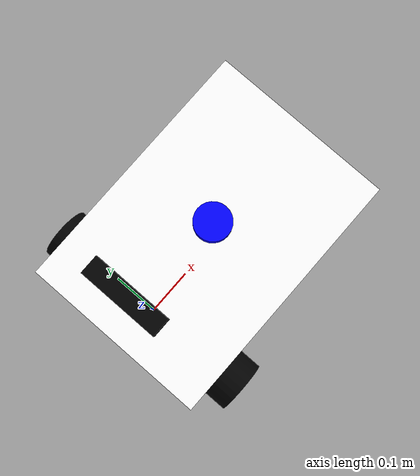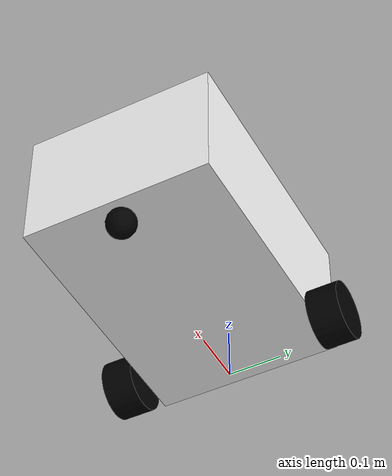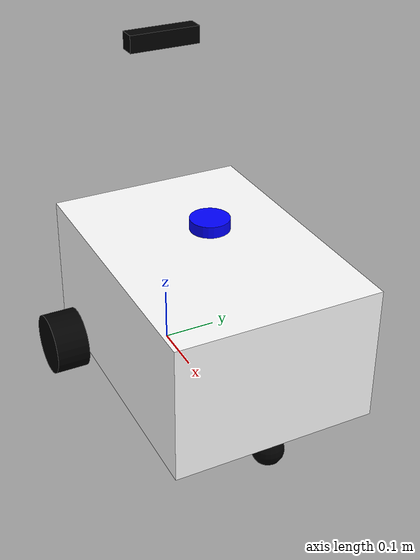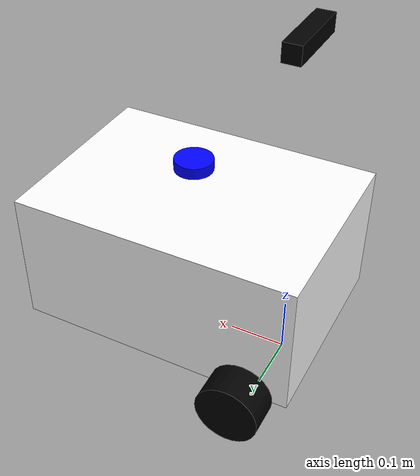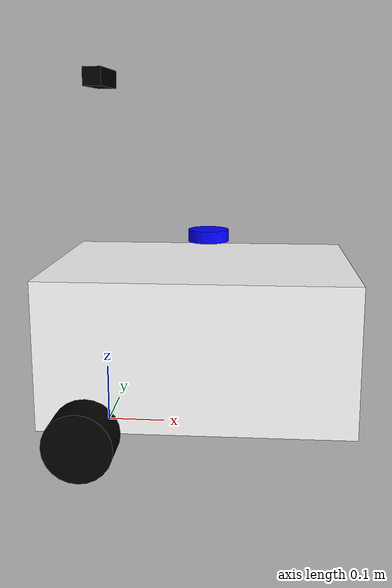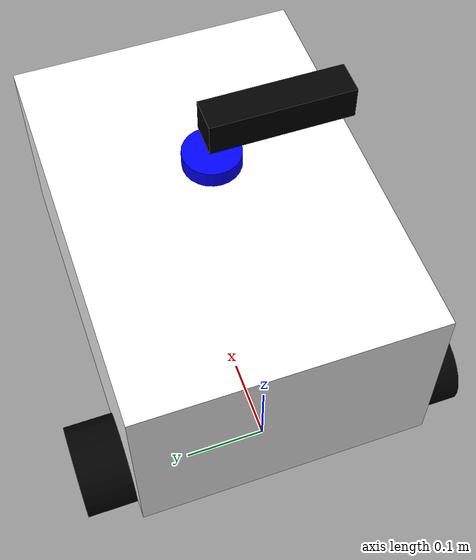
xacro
<?xml version="1.0"?>

<robot name="platypous" xmlns:xacro="http://www.ros.org/wiki/xacro">

<!-- ROBOT PROPERTIES -->

    <xacro:property name="chassisHeight" value="0.240"  />
    <xacro:property name="chassisLength" value="0.500"  />
    <xacro:property name="chassisWidth"  value="0.355"  />
    <xacro:property name="chassisMass"   value="8"      />
    <xacro:property name="chassisOffset" value="0.170" />

    <xacro:property name="wheelWidth"    value="0.060" />
    <xacro:property name="wheelRadius"   value="0.055" />
    <xacro:property name="wheelMass"     value="0.3"   />
    <xacro:property name="wheelFriction" value="1.0"   />
    <xacro:property name="wheelTorque"   value="1.5"     />

<!-- DEFINITIONS -->

    <xacro:property name="PI" value="3.1415926535897931"/>

    <material name="gray">
        <color rgba="${150/255} ${150/255} ${150/255} 1.0"/>
    </material>

    <material name="blue">
        <color rgba="${0/255} ${0/255} ${255/255} 1.0"/>
    </material>

    <material name="black">
        <color rgba="${0/255} ${0/255} ${0/255} 1.0"/>
    </material>

    <material name="white">
        <color rgba="${255/255} ${255/255} ${255/255} 1.0"/>
    </material>

<!-- MACROS -->

    <xacro:macro name="cylinder_inertia" params="m r h">
        <inertia  ixx="${m*(3*r*r+h*h)/12}" ixy = "0" ixz = "0"
                  iyy="${m*(3*r*r+h*h)/12}" iyz = "0"
                  izz="${m*r*r/2}" />
    </xacro:macro>

    <xacro:macro name="box_inertia" params="m x y z">
        <inertia  ixx="${m*(y*y+z*z)/12}" ixy = "0" ixz = "0"
                  iyy="${m*(x*x+z*z)/12}" iyz = "0"
                  izz="${m*(x*x+y*y)/12}" />
    </xacro:macro>

    <xacro:macro name="wheel" params="prefix x_offset y_offset">

        <link name="${prefix}_wheel_link">
            <collision>
                <origin xyz="0 0 0" rpy="0 ${PI/2} ${PI/2}" />
                <geometry>
                    <sphere radius="${wheelRadius}"/>
                </geometry>
            </collision>

            <visual>
                <origin xyz="0 0 0" rpy="0 ${PI/2} ${PI/2}" />
                <geometry>
                    <cylinder length="${wheelWidth}" radius="${wheelRadius}"/>
                </geometry>
                <material name="black"/>
            </visual>

            <inertial>
                <origin xyz="0 0 0" rpy="0 ${PI/2} ${PI/2}" />
                <mass value="${wheelMass}"/>
                <xacro:cylinder_inertia m="${wheelMass}" r="${wheelRadius}" h="${wheelWidth}"/>
            </inertial>
        </link>

        <joint name="${prefix}_wheel_joint" type="continuous">
            <parent link="chassis"/>
            <child link="${prefix}_wheel_link"/>
            <origin xyz="${x_offset} ${y_offset} ${-chassisHeight / 2}" rpy="0 0 0" />
            <axis xyz="0 1 0" rpy="0 0 0" />
            <dynamics friction="0.0" damping="0.0"/>
        </joint>

        <gazebo reference="${prefix}_wheel_link">
            <mu1 value="${wheelFriction}"/>
            <mu2 value="${wheelFriction}"/>
            <kp  value="10000000.0" />
            <kd  value="1.0" />
            <fdir1 value="1 0 0" />
            <material>Gazebo/Black</material>
        </gazebo>

    </xacro:macro>

<!-- ROBOT DESCRIPTION -->

    <!-- base link -->
    <link name="base_link" />

    <!-- chassis -->
    <link name="chassis">
        <collision>
            <origin xyz="0 0 0" rpy="0 0 0"/>
            <geometry>
                <box size="${chassisLength} ${chassisWidth} ${chassisHeight}"/>
            </geometry>
        </collision>

        <visual>
            <origin xyz="0 0 0" rpy="0 0 0"/>
            <geometry>
                <box size="${chassisLength} ${chassisWidth} ${chassisHeight}"/>
            </geometry>
            <material name="white"/>
        </visual>

        <inertial>
            <origin xyz="0 0 0" rpy="0 0 0"/>
            <mass value="${chassisMass}"/>
            <xacro:box_inertia m="${chassisMass}" x="${chassisLength}" y="${chassisWidth}" z="${chassisHeight}"/>
        </inertial>
    </link>

    <joint name="chassis_joint" type="fixed">
        <parent link="base_link"/>
        <child link="chassis"/>
        <origin xyz="${chassisOffset} 0 ${wheelRadius+chassisHeight/2}" rpy="0 0 0"/>
    </joint>

    <gazebo reference="chassis">
        <material>Gazebo/White</material>
    </gazebo>

    <!-- wheels -->
    <xacro:wheel prefix="right" x_offset="${-chassisOffset}" y_offset="${-(chassisWidth + wheelWidth) / 2}" />
    <xacro:wheel prefix="left"  x_offset="${-chassisOffset}" y_offset="${ (chassisWidth + wheelWidth) / 2}" />

    <!-- caster wheel -->
    <link name="caster_wheel">
        <collision>
            <origin xyz="0 0 0" rpy="0 0 0"/>
            <geometry>
                <sphere radius="${wheelRadius / 2}"/>
            </geometry>
        </collision>

        <visual>
            <origin xyz="0 0 0" rpy="0 0 0"/>
            <geometry>
                <sphere radius="${wheelRadius / 2}"/>
            </geometry>
            <material name="black"/>
        </visual>

        <inertial>
            <origin xyz="0 0 0" rpy="0 0 0"/>
            <mass value="0.1"/>
            <inertia  ixx="0.000121" ixy = "0" ixz = "0"
                      iyy="0.000121" iyz = "0"
                      izz="0.000121" />
        </inertial>
    </link>

    <joint name="caster_wheel_joint" type="fixed">
        <parent link="chassis"/>
        <child link="caster_wheel"/>
        <origin xyz="${(chassisLength / 2) - wheelRadius / 2} 0 ${-(wheelRadius + chassisHeight) / 2}" rpy="0 0 0"/>
    </joint>

    <gazebo reference="caster_wheel">
        <mu1 value="0.1" />
        <mu2 value="0.1" />
        <kp  value="10000000.0" />
        <kd  value="1.0" />
        <fdir1 value="1 0 0" />
        <material>Gazebo/Black</material>
    </gazebo>

    <!-- camera -->
    <link name="camera_link">
        <visual>
            <geometry>
                <box size="0.03 0.125 0.03"/>
            </geometry>
            <material name="black"/>
        </visual>
    </link>

    <joint name="camera_joint" type="fixed">
        <origin xyz="0.0 0 0.6" rpy="0 0 0"/>
        <parent link="base_link"/>
        <child link="camera_link"/>
    </joint>

    <gazebo reference="camera_link">
        <material>Gazebo/Black</material>
    </gazebo>

    <link name="camera_optical_frame" />

    <joint name="camera_optical_joint" type="fixed">
        <origin xyz="0 0 0" rpy="-1.57 0 -1.57"/>
        <parent link="camera_link"/>
        <child link="camera_optical_frame"/>
    </joint>

    <!-- laser -->
    <link name="laser_link">
        <visual>
            <geometry>
                <cylinder length="0.02" radius="0.034"/>
            </geometry>
            <material name="blue"/>
        </visual>
    </link>

    <joint name="laser_joint" type="fixed">
        <origin xyz="0.18 0 0.34" rpy="0 0 3.141593"/>
        <parent link="base_link"/>
        <child link="laser_link"/>
    </joint>

    <gazebo reference="laser_link">
        <material>Gazebo/Blue</material>
    </gazebo>

<!-- GAZEBO PLUGINS -->

    <gazebo>
        <plugin name="differential_drive_controller" filename="libgazebo_ros_diff_drive.so">
            <updateRate>100</updateRate>
            <leftJoint>left_wheel_joint</leftJoint>
            <rightJoint>right_wheel_joint</rightJoint>

            <wheelSeparation>${chassisWidth + wheelWidth}</wheelSeparation>
            <wheelDiameter>${wheelRadius * 2}</wheelDiameter>

            <wheelAcceleration>0.0</wheelAcceleration>
            <wheelTorque>${wheelTorque}</wheelTorque>
            <commandTopic>/cmd_vel</commandTopic>
            <odometryTopic>/odometry/wheel</odometryTopic>
            <odometryFrame>odom</odometryFrame>
            <robotBaseFrame>base_link</robotBaseFrame>

            <odometrySource>encoder</odometrySource>

            <publishWheelTF>false</publishWheelTF>
            <publishOdomTF>true</publishOdomTF>
            <publishWheelJointState>false</publishWheelJointState>

            <legacyMode>false</legacyMode>
        </plugin>
    </gazebo>

    <gazebo>
        <plugin name="ground_truth" filename="libgazebo_ros_p3d.so">
            <frameName>map</frameName>
            <bodyName>base_link</bodyName>
            <topicName>/odometry/groundtruth</topicName>
            <updateRate>30.0</updateRate>
        </plugin>
    </gazebo>

    <gazebo reference="camera_link">
        <sensor name="depth_camera" type="depth">
            <update_rate>5</update_rate>
            <camera>
                <horizontal_fov>1.6</horizontal_fov>
                <image>
                    <width>640</width>
                    <height>360</height>
                    <format>L_INT8</format>
                </image>
                <clip>
                    <near>0.01</near>
                    <far>100</far>
                </clip>
            </camera>
            <plugin name="depth_camera_controller" filename="libgazebo_ros_openni_kinect.so">
                <baseline>0.2</baseline>
                <alwaysOn>true</alwaysOn>
                <updateRate>0.0</updateRate>
                <cameraName>camera</cameraName>
                <imageTopicName>/camera/color/image_raw</imageTopicName>
                <cameraInfoTopicName>/camera/color/camera_info</cameraInfoTopicName>
                <depthImageTopicName>/camera/aligned_depth_to_color/image_raw</depthImageTopicName>
                <depthImageInfoTopicName>/camera/aligned_depth_to_color/camera_info</depthImageInfoTopicName>
                <pointCloudTopicName>/camera/depth/color/points</pointCloudTopicName>
                <frameName>camera_optical_frame</frameName>
                <pointCloudCutoff>0.01</pointCloudCutoff>
                <pointCloudCutoffMax>10.0</pointCloudCutoffMax>
                <distortionK1>0.00000001</distortionK1>
                <distortionK2>0.00000001</distortionK2>
                <distortionK3>0.00000001</distortionK3>
                <distortionT1>0.00000001</distortionT1>
                <distortionT2>0.00000001</distortionT2>
                <CxPrime>0</CxPrime>
                <Cx>0</Cx>
                <Cy>0</Cy>
                <focalLength>0</focalLength>
                <hackBaseline>0</hackBaseline>
            </plugin>
        </sensor>
    </gazebo>

    <gazebo reference="laser_link">
        <sensor type="ray" name="lidar">
            <pose>0 0 0 0 0 0</pose>
            <visualize>false</visualize>
            <update_rate>10</update_rate>
            <ray>
                <scan>
                    <horizontal>
                        <samples>720</samples>
                        <resolution>1</resolution>
                        <min_angle>-3.141593</min_angle>
                        <max_angle>3.141593</max_angle>
                    </horizontal>
                </scan>
                <range>
                    <min>0.12</min>
                    <max>10.0</max>
                    <resolution>0.01</resolution>
                </range>
                <noise>
                    <type>gaussian</type>
                    <mean>0.0</mean>
                    <stddev>0.01</stddev>
                </noise>
            </ray>
            <plugin name="gazebo_ros_head_hokuyo_controller" filename="libgazebo_ros_laser.so">
                <topicName>/scan</topicName>
                <frameName>laser_link</frameName>
            </plugin>
        </sensor>
    </gazebo>

    <gazebo reference="camera_optical_frame">
        <gravity>true</gravity>
        <sensor name="imu_sensor" type="imu">
            <always_on>true</always_on>
            <update_rate>200</update_rate>
            <visualize>true</visualize>
            <topic>/camera/imu</topic>
            <plugin filename="libgazebo_ros_imu_sensor.so" name="imu_plugin">
                <topicName>/camera/imu</topicName>
                <bodyName>chassis</bodyName>
                <updateRateHZ>200.0</updateRateHZ>
                <gaussianNoise>0.01</gaussianNoise>
                <xyzOffset>0 0 0</xyzOffset>
                <rpyOffset>0 0 0</rpyOffset>
                <frameName>camera_optical_frame</frameName>
                <initialOrientationAsReference>false</initialOrientationAsReference>
            </plugin>
            <pose>0 0 0 0 0 0</pose>
        </sensor>
    </gazebo>

</robot>
